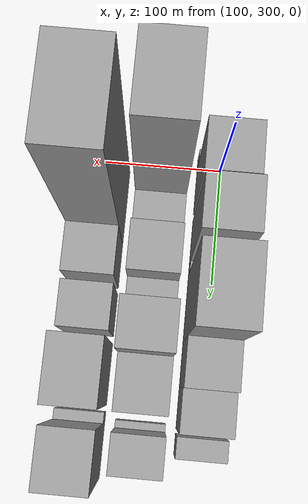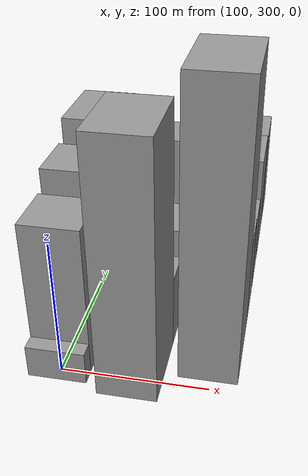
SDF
<sdf version="1.6">
 <world name="default">
  <model name="building_23">
   <static>1</static>
   <pose>100.0000 296.0461 0 0.000000 0.000000 0.000000</pose>
   <link name="link">
    <pose>0 0 12.00 0 0 0</pose>
    <collision name="collision"><geometry><box><size>40.0000 10.8802 24.0000</size></box></geometry></collision>
    <visual name="visual">
     <cast_shadows>0</cast_shadows>
     <geometry><box><size>40.0000 10.8802 24.0000</size></box></geometry>
     <material>
      <script>
       <uri>model://grey_wall/materials/scripts</uri>
       <uri>model://grey_wall/materials/textures</uri>
       <name>vrc/grey_wall</name>
      </script>
     </material>
    </visual>
   </link>
  </model>
  <model name="building_24">
   <static>1</static>
   <pose>100.0000 320.9167 0 0.000000 0.000000 0.000000</pose>
   <link name="link">
    <pose>0 0 55.50 0 0 0</pose>
    <collision name="collision"><geometry><box><size>40.0000 38.8610 111.0000</size></box></geometry></collision>
    <visual name="visual">
     <cast_shadows>0</cast_shadows>
     <geometry><box><size>40.0000 38.8610 111.0000</size></box></geometry>
     <material>
      <script>
       <uri>model://grey_wall/materials/scripts</uri>
       <uri>model://grey_wall/materials/textures</uri>
       <name>vrc/grey_wall</name>
      </script>
     </material>
    </visual>
   </link>
  </model>
  <model name="building_25">
   <static>1</static>
   <pose>100.0000 365.8912 0 0.000000 0.000000 0.000000</pose>
   <link name="link">
    <pose>0 0 63.00 0 0 0</pose>
    <collision name="collision"><geometry><box><size>40.0000 39.0881 126.0000</size></box></geometry></collision>
    <visual name="visual">
     <cast_shadows>0</cast_shadows>
     <geometry><box><size>40.0000 39.0881 126.0000</size></box></geometry>
     <material>
      <script>
       <uri>model://grey_wall/materials/scripts</uri>
       <uri>model://grey_wall/materials/textures</uri>
       <name>vrc/grey_wall</name>
      </script>
     </material>
    </visual>
   </link>
  </model>
  <model name="building_26">
   <static>1</static>
   <pose>100.0000 389.8815 0 0.000000 0.000000 0.000000</pose>
   <link name="link">
    <pose>0 0 10.50 0 0 0</pose>
    <collision name="collision"><geometry><box><size>40.0000 8.8925 21.0000</size></box></geometry></collision>
    <visual name="visual">
     <cast_shadows>0</cast_shadows>
     <geometry><box><size>40.0000 8.8925 21.0000</size></box></geometry>
     <material>
      <script>
       <uri>model://grey_wall/materials/scripts</uri>
       <uri>model://grey_wall/materials/textures</uri>
       <name>vrc/grey_wall</name>
      </script>
     </material>
    </visual>
   </link>
  </model>
  <model name="building_27">
   <static>1</static>
   <pose>100.0000 422.3548 0 0.000000 0.000000 0.000000</pose>
   <link name="link">
    <pose>0 0 70.50 0 0 0</pose>
    <collision name="collision"><geometry><box><size>40.0000 56.0541 141.0000</size></box></geometry></collision>
    <visual name="visual">
     <cast_shadows>0</cast_shadows>
     <geometry><box><size>40.0000 56.0541 141.0000</size></box></geometry>
     <material>
      <script>
       <uri>model://grey_wall/materials/scripts</uri>
       <uri>model://grey_wall/materials/textures</uri>
       <name>vrc/grey_wall</name>
      </script>
     </material>
    </visual>
   </link>
  </model>
  <model name="building_28">
   <static>1</static>
   <pose>100.0000 468.9450 0 0.000000 0.000000 0.000000</pose>
   <link name="link">
    <pose>0 0 36.00 0 0 0</pose>
    <collision name="collision"><geometry><box><size>40.0000 37.1263 72.0000</size></box></geometry></collision>
    <visual name="visual">
     <cast_shadows>0</cast_shadows>
     <geometry><box><size>40.0000 37.1263 72.0000</size></box></geometry>
     <material>
      <script>
       <uri>model://grey_wall/materials/scripts</uri>
       <uri>model://grey_wall/materials/textures</uri>
       <name>vrc/grey_wall</name>
      </script>
     </material>
    </visual>
   </link>
  </model>
  <model name="building_29">
   <static>1</static>
   <pose>100.0000 504.1079 0 0.000000 0.000000 0.000000</pose>
   <link name="link">
    <pose>0 0 30.00 0 0 0</pose>
    <collision name="collision"><geometry><box><size>40.0000 33.1996 60.0000</size></box></geometry></collision>
    <visual name="visual">
     <cast_shadows>0</cast_shadows>
     <geometry><box><size>40.0000 33.1996 60.0000</size></box></geometry>
     <material>
      <script>
       <uri>model://grey_wall/materials/scripts</uri>
       <uri>model://grey_wall/materials/textures</uri>
       <name>vrc/grey_wall</name>
      </script>
     </material>
    </visual>
   </link>
  </model>
  <model name="building_30">
   <static>1</static>
   <pose>100.0000 533.0738 0 0.000000 0.000000 0.000000</pose>
   <link name="link">
    <pose>0 0 15.00 0 0 0</pose>
    <collision name="collision"><geometry><box><size>40.0000 16.7322 30.0000</size></box></geometry></collision>
    <visual name="visual">
     <cast_shadows>0</cast_shadows>
     <geometry><box><size>40.0000 16.7322 30.0000</size></box></geometry>
     <material>
      <script>
       <uri>model://grey_wall/materials/scripts</uri>
       <uri>model://grey_wall/materials/textures</uri>
       <name>vrc/grey_wall</name>
      </script>
     </material>
    </visual>
   </link>
  </model>
  <model name="building_48">
   <static>1</static>
   <pose>149.0000 311.6523 0 0.000000 0.000000 0.000000</pose>
   <link name="link">
    <pose>0 0 91.50 0 0 0</pose>
    <collision name="collision"><geometry><box><size>40.0000 57.0725 183.0000</size></box></geometry></collision>
    <visual name="visual">
     <cast_shadows>0</cast_shadows>
     <geometry><box><size>40.0000 57.0725 183.0000</size></box></geometry>
     <material>
      <script>
       <uri>model://grey_wall/materials/scripts</uri>
       <uri>model://grey_wall/materials/textures</uri>
       <name>vrc/grey_wall</name>
      </script>
     </material>
    </visual>
   </link>
  </model>
  <model name="building_49">
   <static>1</static>
   <pose>149.0000 354.5945 0 0.000000 0.000000 0.000000</pose>
   <link name="link">
    <pose>0 0 27.00 0 0 0</pose>
    <collision name="collision"><geometry><box><size>40.0000 28.8119 54.0000</size></box></geometry></collision>
    <visual name="visual">
     <cast_shadows>0</cast_shadows>
     <geometry><box><size>40.0000 28.8119 54.0000</size></box></geometry>
     <material>
      <script>
       <uri>model://grey_wall/materials/scripts</uri>
       <uri>model://grey_wall/materials/textures</uri>
       <name>vrc/grey_wall</name>
      </script>
     </material>
    </visual>
   </link>
  </model>
  <model name="building_50">
   <static>1</static>
   <pose>149.0000 387.9736 0 0.000000 0.000000 0.000000</pose>
   <link name="link">
    <pose>0 0 37.50 0 0 0</pose>
    <collision name="collision"><geometry><box><size>40.0000 37.9464 75.0000</size></box></geometry></collision>
    <visual name="visual">
     <cast_shadows>0</cast_shadows>
     <geometry><box><size>40.0000 37.9464 75.0000</size></box></geometry>
     <material>
      <script>
       <uri>model://grey_wall/materials/scripts</uri>
       <uri>model://grey_wall/materials/textures</uri>
       <name>vrc/grey_wall</name>
      </script>
     </material>
    </visual>
   </link>
  </model>
  <model name="building_51">
   <static>1</static>
   <pose>149.0000 418.9067 0 0.000000 0.000000 0.000000</pose>
   <link name="link">
    <pose>0 0 22.50 0 0 0</pose>
    <collision name="collision"><geometry><box><size>40.0000 23.9198 45.0000</size></box></geometry></collision>
    <visual name="visual">
     <cast_shadows>0</cast_shadows>
     <geometry><box><size>40.0000 23.9198 45.0000</size></box></geometry>
     <material>
      <script>
       <uri>model://grey_wall/materials/scripts</uri>
       <uri>model://grey_wall/materials/textures</uri>
       <name>vrc/grey_wall</name>
      </script>
     </material>
    </visual>
   </link>
  </model>
  <model name="building_52">
   <static>1</static>
   <pose>149.0000 448.6103 0 0.000000 0.000000 0.000000</pose>
   <link name="link">
    <pose>0 0 57.00 0 0 0</pose>
    <collision name="collision"><geometry><box><size>40.0000 35.4875 114.0000</size></box></geometry></collision>
    <visual name="visual">
     <cast_shadows>0</cast_shadows>
     <geometry><box><size>40.0000 35.4875 114.0000</size></box></geometry>
     <material>
      <script>
       <uri>model://grey_wall/materials/scripts</uri>
       <uri>model://grey_wall/materials/textures</uri>
       <name>vrc/grey_wall</name>
      </script>
     </material>
    </visual>
   </link>
  </model>
  <model name="building_53">
   <static>1</static>
   <pose>149.0000 487.3906 0 0.000000 0.000000 0.000000</pose>
   <link name="link">
    <pose>0 0 36.00 0 0 0</pose>
    <collision name="collision"><geometry><box><size>40.0000 42.0730 72.0000</size></box></geometry></collision>
    <visual name="visual">
     <cast_shadows>0</cast_shadows>
     <geometry><box><size>40.0000 42.0730 72.0000</size></box></geometry>
     <material>
      <script>
       <uri>model://grey_wall/materials/scripts</uri>
       <uri>model://grey_wall/materials/textures</uri>
       <name>vrc/grey_wall</name>
      </script>
     </material>
    </visual>
   </link>
  </model>
  <model name="building_54">
   <static>1</static>
   <pose>149.0000 520.4555 0 0.000000 0.000000 0.000000</pose>
   <link name="link">
    <pose>0 0 7.50 0 0 0</pose>
    <collision name="collision"><geometry><box><size>40.0000 6.0568 15.0000</size></box></geometry></collision>
    <visual name="visual">
     <cast_shadows>0</cast_shadows>
     <geometry><box><size>40.0000 6.0568 15.0000</size></box></geometry>
     <material>
      <script>
       <uri>model://grey_wall/materials/scripts</uri>
       <uri>model://grey_wall/materials/textures</uri>
       <name>vrc/grey_wall</name>
      </script>
     </material>
    </visual>
   </link>
  </model>
  <model name="building_55">
   <static>1</static>
   <pose>149.0000 538.6340 0 0.000000 0.000000 0.000000</pose>
   <link name="link">
    <pose>0 0 30.00 0 0 0</pose>
    <collision name="collision"><geometry><box><size>40.0000 30.3002 60.0000</size></box></geometry></collision>
    <visual name="visual">
     <cast_shadows>0</cast_shadows>
     <geometry><box><size>40.0000 30.3002 60.0000</size></box></geometry>
     <material>
      <script>
       <uri>model://grey_wall/materials/scripts</uri>
       <uri>model://grey_wall/materials/textures</uri>
       <name>vrc/grey_wall</name>
      </script>
     </material>
    </visual>
   </link>
  </model>
  <model name="building_80">
   <static>1</static>
   <pose>198.0000 340.3496 0 0.000000 0.000000 0.000000</pose>
   <link name="link">
    <pose>0 0 105.00 0 0 0</pose>
    <collision name="collision"><geometry><box><size>40.0000 65.2262 210.0000</size></box></geometry></collision>
    <visual name="visual">
     <cast_shadows>0</cast_shadows>
     <geometry><box><size>40.0000 65.2262 210.0000</size></box></geometry>
     <material>
      <script>
       <uri>model://grey_wall/materials/scripts</uri>
       <uri>model://grey_wall/materials/textures</uri>
       <name>vrc/grey_wall</name>
      </script>
     </material>
    </visual>
   </link>
  </model>
  <model name="building_81">
   <static>1</static>
   <pose>198.0000 391.8161 0 0.000000 0.000000 0.000000</pose>
   <link name="link">
    <pose>0 0 33.00 0 0 0</pose>
    <collision name="collision"><geometry><box><size>40.0000 37.7067 66.0000</size></box></geometry></collision>
    <visual name="visual">
     <cast_shadows>0</cast_shadows>
     <geometry><box><size>40.0000 37.7067 66.0000</size></box></geometry>
     <material>
      <script>
       <uri>model://grey_wall/materials/scripts</uri>
       <uri>model://grey_wall/materials/textures</uri>
       <name>vrc/grey_wall</name>
      </script>
     </material>
    </visual>
   </link>
  </model>
  <model name="building_82">
   <static>1</static>
   <pose>198.0000 433.4319 0 0.000000 0.000000 0.000000</pose>
   <link name="link">
    <pose>0 0 30.00 0 0 0</pose>
    <collision name="collision"><geometry><box><size>40.0000 35.5249 60.0000</size></box></geometry></collision>
    <visual name="visual">
     <cast_shadows>0</cast_shadows>
     <geometry><box><size>40.0000 35.5249 60.0000</size></box></geometry>
     <material>
      <script>
       <uri>model://grey_wall/materials/scripts</uri>
       <uri>model://grey_wall/materials/textures</uri>
       <name>vrc/grey_wall</name>
      </script>
     </material>
    </visual>
   </link>
  </model>
  <model name="building_83">
   <static>1</static>
   <pose>198.0000 482.3124 0 0.000000 0.000000 0.000000</pose>
   <link name="link">
    <pose>0 0 45.00 0 0 0</pose>
    <collision name="collision"><geometry><box><size>40.0000 50.2361 90.0000</size></box></geometry></collision>
    <visual name="visual">
     <cast_shadows>0</cast_shadows>
     <geometry><box><size>40.0000 50.2361 90.0000</size></box></geometry>
     <material>
      <script>
       <uri>model://grey_wall/materials/scripts</uri>
       <uri>model://grey_wall/materials/textures</uri>
       <name>vrc/grey_wall</name>
      </script>
     </material>
    </visual>
   </link>
  </model>
  <model name="building_84">
   <static>1</static>
   <pose>198.0000 516.7726 0 0.000000 0.000000 0.000000</pose>
   <link name="link">
    <pose>0 0 9.00 0 0 0</pose>
    <collision name="collision"><geometry><box><size>40.0000 8.6843 18.0000</size></box></geometry></collision>
    <visual name="visual">
     <cast_shadows>0</cast_shadows>
     <geometry><box><size>40.0000 8.6843 18.0000</size></box></geometry>
     <material>
      <script>
       <uri>model://grey_wall/materials/scripts</uri>
       <uri>model://grey_wall/materials/textures</uri>
       <name>vrc/grey_wall</name>
      </script>
     </material>
    </visual>
   </link>
  </model>
  <model name="building_85">
   <static>1</static>
   <pose>198.0000 543.1978 0 0.000000 0.000000 0.000000</pose>
   <link name="link">
    <pose>0 0 42.00 0 0 0</pose>
    <collision name="collision"><geometry><box><size>40.0000 44.1661 84.0000</size></box></geometry></collision>
    <visual name="visual">
     <cast_shadows>0</cast_shadows>
     <geometry><box><size>40.0000 44.1661 84.0000</size></box></geometry>
     <material>
      <script>
       <uri>model://grey_wall/materials/scripts</uri>
       <uri>model://grey_wall/materials/textures</uri>
       <name>vrc/grey_wall</name>
      </script>
     </material>
    </visual>
   </link>
  </model>
 </world>
</sdf>
